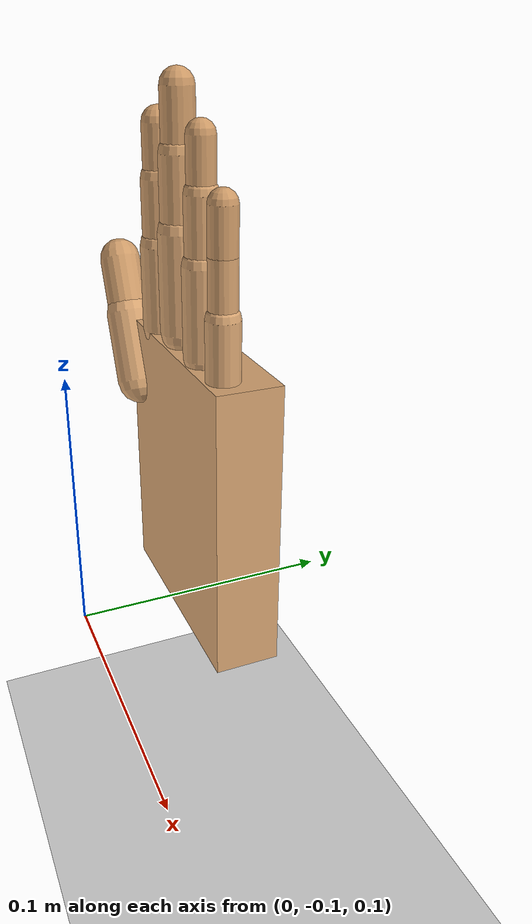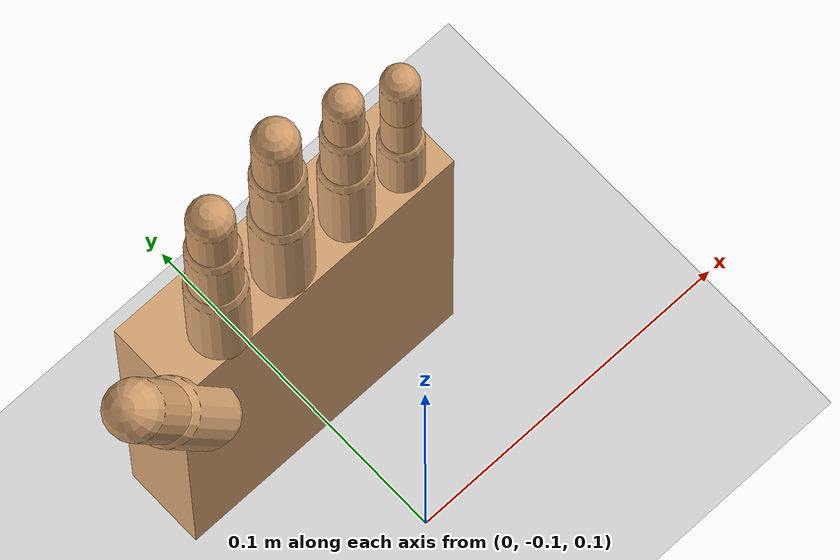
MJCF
<mujoco model="s2s_hand_v2">
  <option gravity="0 0 -9.81"/>
  <visual>
    <headlight ambient="0.4 0.4 0.4" diffuse="0.8 0.8 0.8"/>
  </visual>
  <worldbody>
    <light pos="0 -0.3 0.5" dir="0 0.3 -0.5" diffuse="0.9 0.9 0.9"/>
    <light pos="0.3 0.3 0.5" dir="-0.3 -0.3 -0.5" diffuse="0.5 0.5 0.5"/>
    <geom type="plane" size="0.5 0.5 0.1" rgba="0.85 0.85 0.85 1"/>
    <body name="palm" pos="0 -0.05 0.15" euler="90 0 0">
      <geom type="box" size="0.045 0.055 0.012"
            rgba="0.85 0.65 0.45 1"/>
      <!-- Thumb — offset sideways, angled out -->
      <body name="thumb_base" pos="-0.038 0.03 0.012" euler="0 0 25">
        <joint name="thumb_j1" type="hinge" axis="1 0 0" range="0 1.3"/>
        <geom type="capsule" size="0.009"
              fromto="0 0 0 0 0.028 0"
              rgba="0.85 0.65 0.45 1"/>
        <body name="thumb_tip" pos="0 0.028 0">
          <joint name="thumb_j2" type="hinge" axis="1 0 0" range="0 1.1"/>
          <geom type="capsule" size="0.008"
                fromto="0 0 0 0 0.022 0"
                rgba="0.82 0.62 0.42 1"/>
        </body>
      </body>
      <!-- Index finger -->
      <body name="index_base" pos="-0.026 0.055 0.005">
        <joint name="index_j1" type="hinge" axis="1 0 0" range="0 1.7"/>
        <geom type="capsule" size="0.008"
              fromto="0 0 0 0 0.032 0"
              rgba="0.85 0.65 0.45 1"/>
        <body name="index_mid" pos="0 0.032 0">
          <joint name="index_j2" type="hinge" axis="1 0 0" range="0 1.4"/>
          <geom type="capsule" size="0.007"
                fromto="0 0 0 0 0.024 0"
                rgba="0.83 0.63 0.43 1"/>
          <body name="index_tip" pos="0 0.024 0">
            <joint name="index_j3" type="hinge" axis="1 0 0" range="0 1.1"/>
            <geom type="capsule" size="0.006"
                  fromto="0 0 0 0 0.019 0"
                  rgba="0.81 0.61 0.41 1"/>
          </body>
        </body>
      </body>
      <!-- Middle finger -->
      <body name="middle_base" pos="-0.005 0.06 0.005">
        <joint name="middle_j1" type="hinge" axis="1 0 0" range="0 1.7"/>
        <geom type="capsule" size="0.008"
              fromto="0 0 0 0 0.036 0"
              rgba="0.85 0.65 0.45 1"/>
        <body name="middle_mid" pos="0 0.036 0">
          <joint name="middle_j2" type="hinge" axis="1 0 0" range="0 1.4"/>
          <geom type="capsule" size="0.007"
                fromto="0 0 0 0 0.026 0"
                rgba="0.83 0.63 0.43 1"/>
          <body name="middle_tip" pos="0 0.026 0">
            <joint name="middle_j3" type="hinge" axis="1 0 0" range="0 1.1"/>
            <geom type="capsule" size="0.006"
                  fromto="0 0 0 0 0.021 0"
                  rgba="0.81 0.61 0.41 1"/>
          </body>
        </body>
      </body>
      <!-- Ring finger -->
      <body name="ring_base" pos="0.016 0.057 0.005">
        <joint name="ring_j1" type="hinge" axis="1 0 0" range="0 1.7"/>
        <geom type="capsule" size="0.007"
              fromto="0 0 0 0 0.032 0"
              rgba="0.85 0.65 0.45 1"/>
        <body name="ring_mid" pos="0 0.032 0">
          <joint name="ring_j2" type="hinge" axis="1 0 0" range="0 1.4"/>
          <geom type="capsule" size="0.006"
                fromto="0 0 0 0 0.023 0"
                rgba="0.83 0.63 0.43 1"/>
          <body name="ring_tip" pos="0 0.023 0">
            <joint name="ring_j3" type="hinge" axis="1 0 0" range="0 1.1"/>
            <geom type="capsule" size="0.005"
                  fromto="0 0 0 0 0.018 0"
                  rgba="0.81 0.61 0.41 1"/>
          </body>
        </body>
      </body>
      <!-- Little finger -->
      <body name="little_base" pos="0.034 0.049 0.005">
        <joint name="little_j1" type="hinge" axis="1 0 0" range="0 1.7"/>
        <geom type="capsule" size="0.006"
              fromto="0 0 0 0 0.027 0"
              rgba="0.85 0.65 0.45 1"/>
        <body name="little_mid" pos="0 0.027 0">
          <joint name="little_j2" type="hinge" axis="1 0 0" range="0 1.4"/>
          <geom type="capsule" size="0.005"
                fromto="0 0 0 0 0.020 0"
                rgba="0.83 0.63 0.43 1"/>
          <body name="little_tip" pos="0 0.020 0">
            <joint name="little_j3" type="hinge" axis="1 0 0" range="0 1.1"/>
            <geom type="capsule" size="0.005"
                  fromto="0 0 0 0 0.016 0"
                  rgba="0.81 0.61 0.41 1"/>
          </body>
        </body>
      </body>
    </body>
  </worldbody>
</mujoco>
